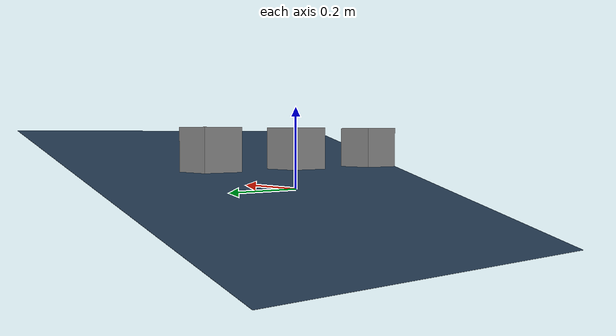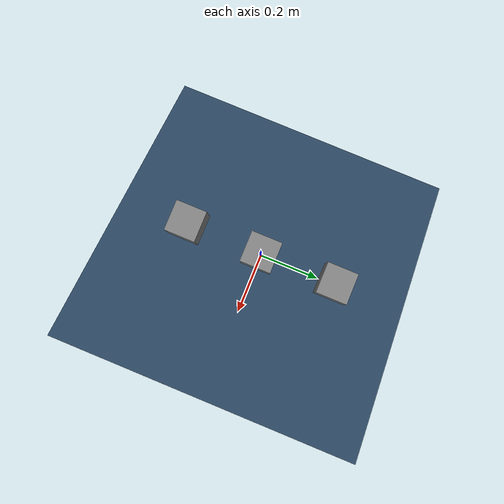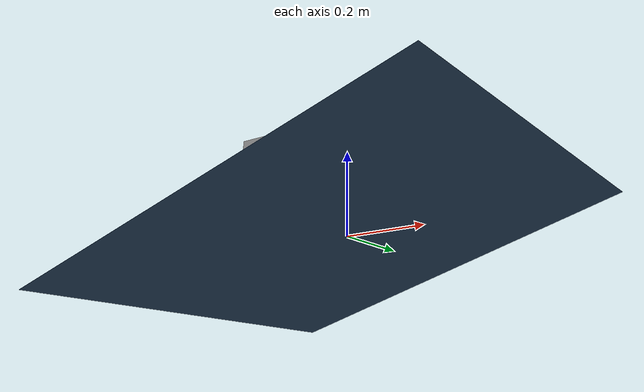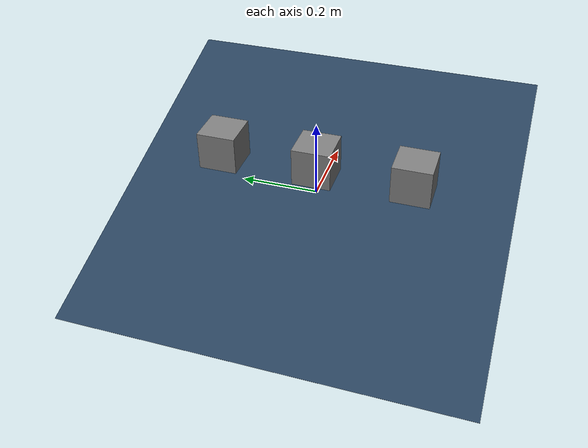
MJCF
<mujoco model="box">

    <asset>
        <texture name="grid" type="2d" builtin="checker" rgb1=".1 .2 .3"
            rgb2=".2 .3 .4" width="300" height="300" mark="none"/>
        <material name="grid" texture="grid" texrepeat="6 6" texuniform="true" reflectance=".2"/>
        <material name="wall" rgba=".5 .5 .5 1"/>
    </asset>

    <default>
        <geom type="box" size=".05 .05 .05" />
        <joint type="free"/>
    </default>

    <worldbody>
        <light name="light" pos="-.2 0 1"/>
        <geom name="ground" type="plane" size=".5 .5 10" material="grid" zaxis="-.3 0 1" friction=".1"/>
        <camera name="y" pos="-.1 -.6 .3" xyaxes="1 0 0 0 1 2"/>
        <body pos="0 .25 .1">
            <joint/>
            <geom friction=".5"/>
        </body>
        <body pos="0 .0 .1">
            <joint/>
            <geom friction=".3"/>
        </body>
        <body pos="0 -.25 .1">
            <joint/>
            <geom friction=".1"/>
        </body>
    </worldbody>
</mujoco>
